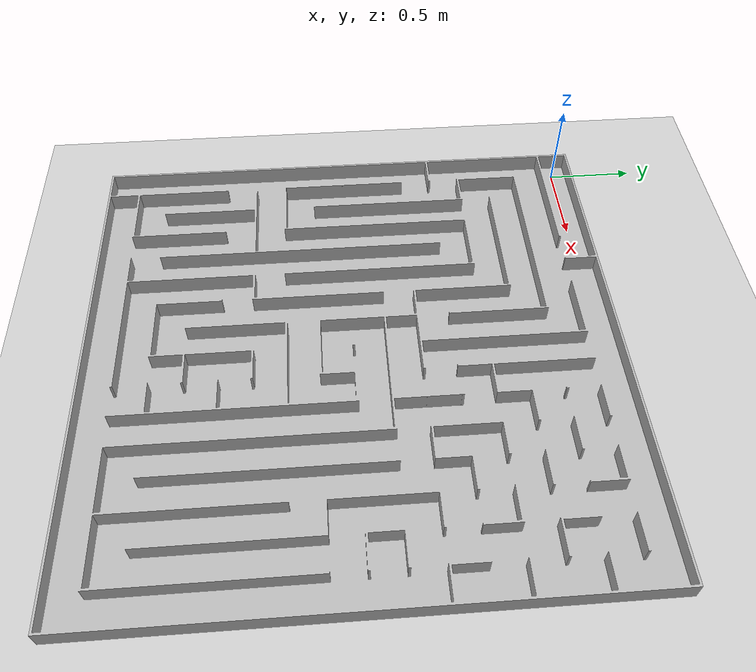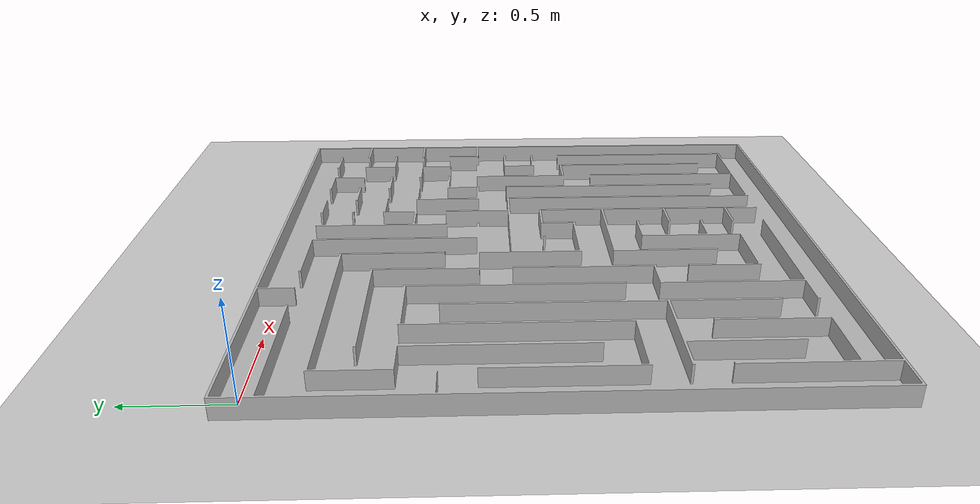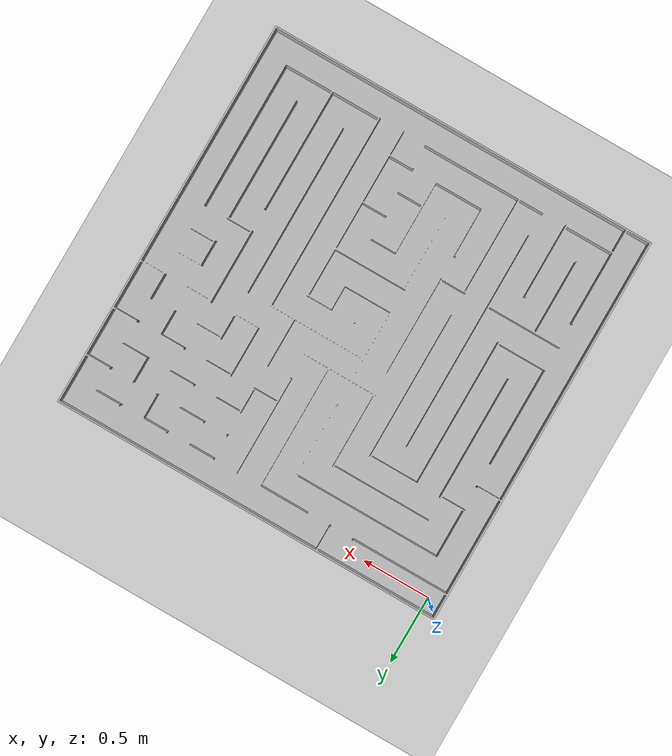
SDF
<?xml version="1.0"?>
<sdf version="1.4">
    <world name="default">
        <include>
            <uri>model://ground_plane</uri>
        </include>
        <include>
            <uri>model://sun</uri>
        </include>
        <model name="my_mesh">
            <pose>0 0 0  0 0 -1.57</pose>
            <static>true</static>
            <link name="body">
                <visual name="visual">
                    <geometry>
                        <mesh>
                <uri>model://maze.stl</uri>
                <scale>0.001 0.001 0.001</scale>
            </mesh>
                    </geometry>
                </visual>

                <collision name="collision">
                    <geometry>
                       <mesh>
                <uri>model://maze.stl</uri>
                <scale>0.001 0.001 0.001</scale>
            </mesh>
                    </geometry>
                </collision>
            </link>

            <gazebo reference="body">
                <material>Gazebo/White</material>
            </gazebo>
        </model>
    </world>
</sdf>
